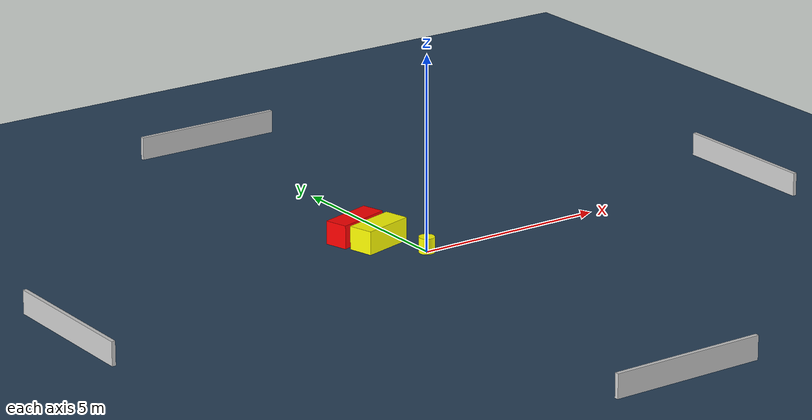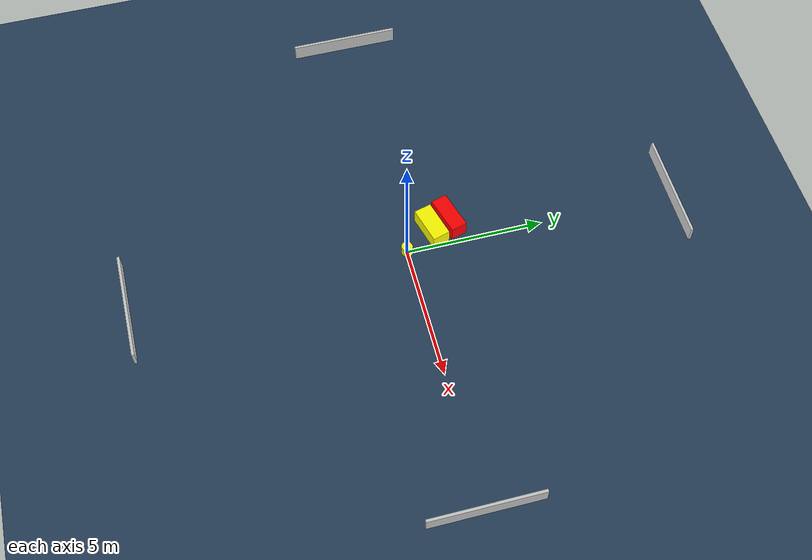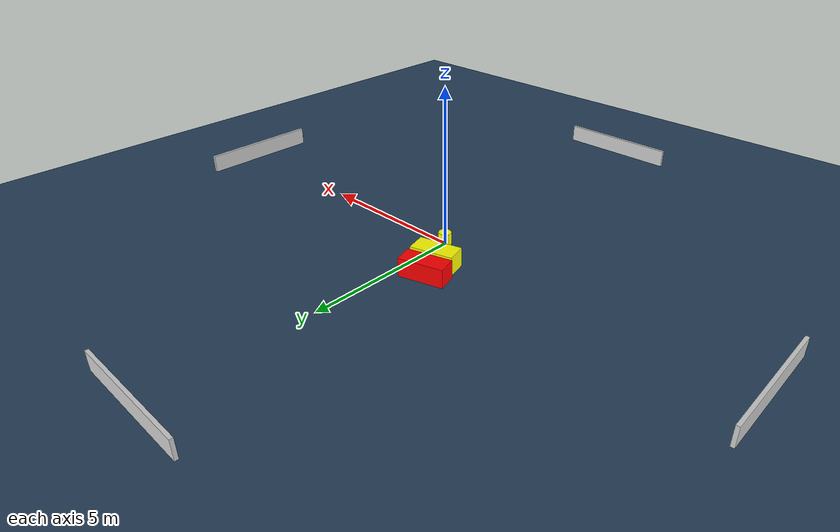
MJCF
<?xml version="1.0" ?>
<mujoco model="generated_environment">
  <option timestep="0.01" integrator="RK4" cone="elliptic"/>
  <default>
    <geom density="1"/>
  </default>
  <asset>
    <texture builtin="gradient" height="3072" name="skybox" rgb1="0.3 0.5 0.7" rgb2="0 0 0" type="skybox" width="512"/>
    <texture builtin="checker" height="300" name="groundplane" rgb1="0.2 0.3 0.4" rgb2="0.1 0.2 0.3" type="2d" width="300"/>
    <material name="groundplane" reflectance="0.2" texrepeat="5 5" texture="groundplane"/>
  </asset>
  <worldbody>
    <light dir="0 0 -1" directional="true" pos="0 0 1.5"/>
    <geom condim="3" friction="0.5 0.005 0.001" material="groundplane" name="floor" pos="0 0 0" size="0 0 0.05" type="plane"/>
    <body name="walls">
      <geom name="wall_1" condim="4" pos="-10.0 0.0 0.3" rgba="0.800000011920929 0.800000011920929 0.800000011920929 1.0" size="0.05 2.0 0.3" type="box"/>
      <geom name="wall_2" condim="4" pos="10.0 0.0 0.3" rgba="0.800000011920929 0.800000011920929 0.800000011920929 1.0" size="0.05 2.0 0.3" type="box"/>
      <geom name="wall_3" condim="4" pos="0.0 -10.0 0.3" rgba="0.800000011920929 0.800000011920929 0.800000011920929 1.0" size="2.0 0.05 0.3" type="box"/>
      <geom name="wall_4" condim="4" pos="0.0 10.0 0.3" rgba="0.800000011920929 0.800000011920929 0.800000011920929 1.0" size="2.0 0.05 0.3" type="box"/>
    </body>
    <body name="robot">
      <joint name="joint_x" type="slide" pos="0 0 0" axis="1 0 0"/>
      <joint name="joint_y" type="slide" pos="0 0 0" axis="0 1 0"/>
      <geom name="robot" type="cylinder" pos="0.0 0.0 0.2" size="0.2 0.2 0.0" mass="5.0" friction="1.0 0.005 0.0001" condim="4" rgba="1.0 1.0 0.0 1.0"/>
    </body>
    <body name="obstacle_1_movable">
      <geom name="obstacle_1_movable" condim="4" pos="-0.6655576243805242 1.0926547534980195 0.3" euler="0 0 285.22932438297664" friction="0.0 0.005 0.001" rgba="1.0 1.0 0.0 1.0" size="0.32221648178153633 0.6846186236843568 0.3" type="box" mass="0.1"/>
      <joint type="free"/>
    </body>
    <body name="obstacle_2_static">
      <geom name="obstacle_2_static" condim="4" pos="-0.8977409872034728 1.7871162837900896 0.3" euler="0 0 106.14538640311824" friction="0.0 0.005 0.001" rgba="1.0 0.0 0.0 1.0" size="0.2975852734998171 0.71402683514842 0.3" type="box"/>
    </body>
  </worldbody>
  <actuator>
    <motor name="actuator_x" joint="joint_x" gear="1" ctrlrange="-1 1"/>
    <motor name="actuator_y" joint="joint_y" gear="1" ctrlrange="-1 1"/>
  </actuator>
</mujoco>
